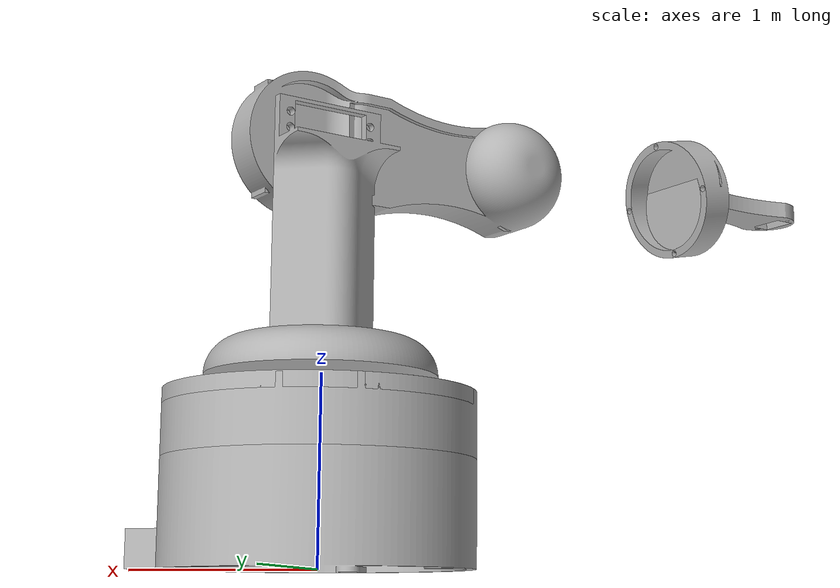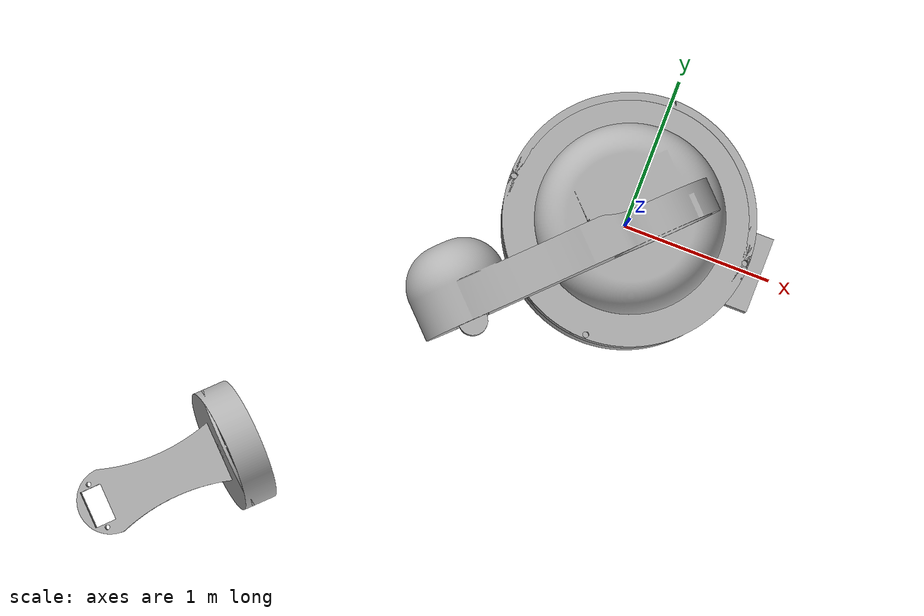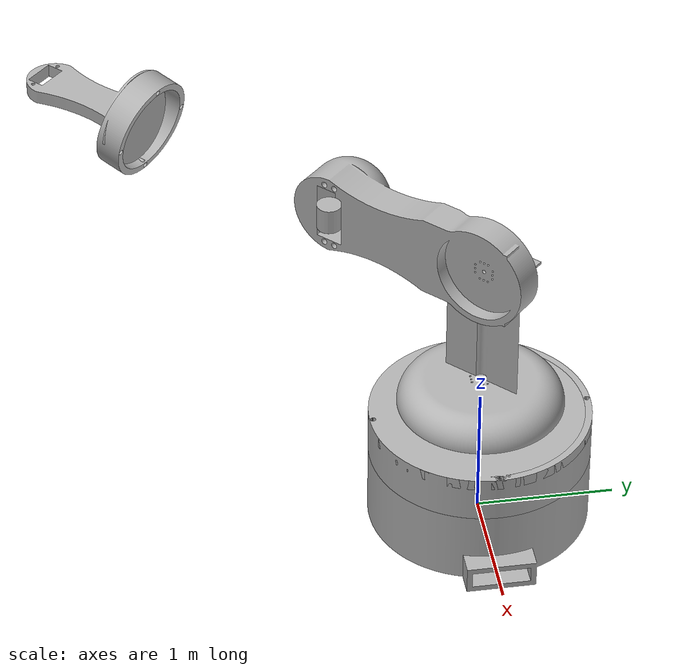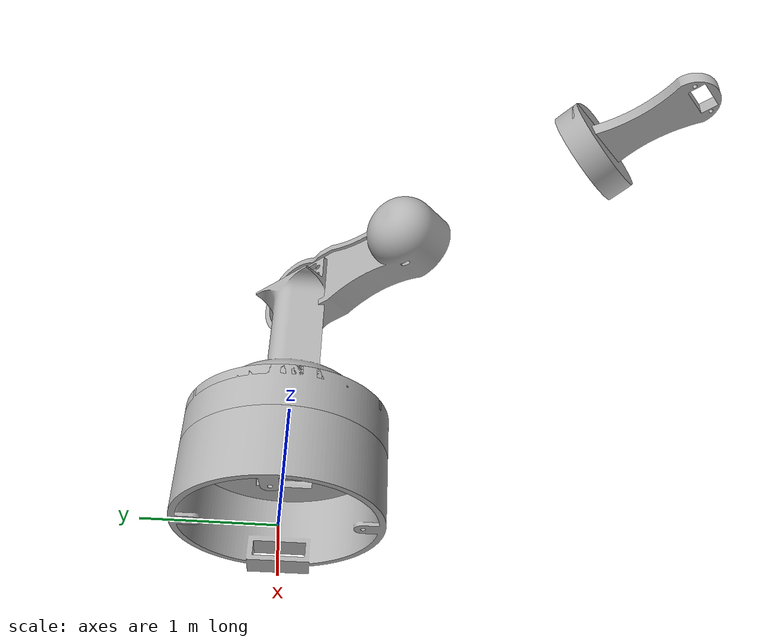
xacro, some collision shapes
<?xml version="1.0"?>
<robot xmlns:xacro="http://ros.org/wiki/xacro" name="simple_arm">

  <!--Material-->
  <xacro:property name="mesh_scale" value="0.01 0.01 0.01"/>

  <material name="grey">
    <color rgba="0.7 0.7 0.7 1.0"/>
  </material>

  <!--Base Link-->

  <gazebo>
    <static> true </static>
    <plugin name="gazebo_ros2_control" filename="libgazebo_ros2_control.so"/>
  </gazebo>

  <ros2_control name="SimpleArmHardware" type="system">
    <hardware>
      <plugin>mock_components/GenericSystem</plugin>
    </hardware>
    <joint name="joint2">
      <command_interface name="position"/>
      <state_interface name="position"/>
      <state_interface name="velocity"/>
    </joint>
    <joint name="joint3">
      <command_interface name="position"/>
      <state_interface name="position"/>
      <state_interface name="velocity"/>
    </joint>
    <joint name="joint4">
      <command_interface name="position"/>
      <state_interface name="position"/>
      <state_interface name="velocity"/>
    </joint>
    <joint name="joint5">
      <command_interface name="position"/>
      <state_interface name="position"/>
      <state_interface name="velocity"/>
    </joint>
  </ros2_control>

  <link name="Base">
    <visual>
      <origin xyz="0 0 0" rpy="${1.5708} 0 0"/>
      <geometry>
        <mesh filename="/home/bbhanda/scoutbot_ws/src/scoutbot_description/meshes/Base.stl" scale="${mesh_scale}"/>
      </geometry>
      <material name="grey"/>
    </visual>
  </link>

  <link name="Base_Cover">
    <visual>
      <origin xyz="0 0 0" rpy="${1.5708} 0 0"/>
      <geometry>
        <mesh filename="/home/bbhanda/scoutbot_ws/src/scoutbot_description/meshes/Base_Cover.stl" scale="${mesh_scale}"/>
      </geometry>
      <material name="grey"/>
    </visual>

    <collision>
      <origin xyz="0 0 0" rpy="0 0 0"/>
      <geometry>
        <box size="0.3 0.3 0.05"/>
      </geometry>
    </collision>

    <inertial>
      <mass value="2.0"/>
      <origin xyz="0 0 0" rpy="0 0 0"/>
      <inertia ixx="0.01" ixy="0.00" ixz="0.00"
      iyy="0.01" iyz="0.00"
      izz="0.01"/>
    </inertial>
  </link>

  <joint name="base" type="fixed">
    <parent link="Base"/>
    <child link="Base_Cover"/>
    <origin xyz="0 0 0.55" rpy="0 0 0"/>
  </joint>

<!--Joint_1-->
  <link name="Joint_1">
    <visual>
      <origin xyz="0 0 0" rpy="${-1.5708} 0 0"/>
      <geometry>
        <mesh filename="/home/bbhanda/scoutbot_ws/src/scoutbot_description/meshes/Joint_1.stl" scale="${mesh_scale}"/>
      </geometry>
      <material name="grey"/>
    </visual>

    <collision>
      <origin xyz="0 0 0" rpy="0 0 0"/>
      <geometry>
        <box size="0.3 0.3 0.05"/>
      </geometry>
    </collision>

    <inertial>
      <mass value="2.0"/>
      <origin xyz="0 0 0" rpy="0 0 0"/>
      <inertia ixx="0.01" ixy="0.00" ixz="0.00"
      iyy="0.01" iyz="0.00"
      izz="0.01"/>
    </inertial>
  </link>

  <joint name="joint1" type="fixed">
    <parent link="Base_Cover"/>
    <child link="Joint_1"/>
    <origin xyz="0 0 0.345" rpy="0 0 0"/>
  </joint>

<!--Joint_2-->
  <link name="Joint_2">
    <visual>
      <origin xyz="0 0 0" rpy="${1.5708} 0 0"/>
      <geometry>
        <mesh filename="/home/bbhanda/scoutbot_ws/src/scoutbot_description/meshes/Link_1-Joint_2.stl" scale="${mesh_scale}"/>
      </geometry>
      <material name="grey"/>
    </visual>

    <collision>
      <origin xyz="0 0 0" rpy="0 0 0"/>
      <geometry>
        <cylinder radius="0.025" length="0.2"/>
      </geometry>
    </collision>

    <inertial>
      <mass value="1.0"/>
      <origin xyz="0 0 0" rpy="0 0 0"/>
      <inertia ixx="0.005" ixy="0" ixz="0" iyy="0.005" iyz="0" izz="0.005"/>
    </inertial>
  </link>

  <transmission name="joint2_trans">
    <type>transmission_interface/SimpleTransmission</type>
    <joint name="joint2">
      <hardwareInterface>hardware_interface/PositionJointInterface</hardwareInterface>
    </joint>
    <actuator name="joint2_motor">
      <mechanicalReduction>1</mechanicalReduction>
    </actuator>
  </transmission>

  <joint name="joint2" type="revolute">
    <parent link="Joint_1"/>
    <child link="Joint_2"/>
    <origin xyz="0 0 0.08" rpy="0 0 0"/>
    <axis xyz="0 0 1"/>
    <limit lower="-3.14" upper="3.14" effort="5.0" velocity="1.0"/>
  </joint>

  <gazebo reference="joint2">
    <kp>100.0</kp>
    <kd>1.0</kd>
    <mu1>1.0</mu1>
    <mu2>1.0</mu2>
    <fdir1>1 0 0</fdir1>
  </gazebo>

<!--Joint_3-->
  <link name="Joint_3">
    <visual>
      <origin xyz="-0.5 0 0" rpy="0 1.5708 0"/>
      <geometry>
        <mesh filename="/home/bbhanda/scoutbot_ws/src/scoutbot_description/meshes/Link_2-Joint_3.stl" scale="${mesh_scale}"/>
      </geometry>
      <material name="grey"/>
    </visual>

    <collision>
      <origin xyz="0 0 0" rpy="0 0 0"/>
      <geometry>
        <cylinder radius="0.025" length="0.19"/>
      </geometry>
    </collision>

    <inertial>
      <mass value="1.0"/>
      <origin xyz="0 0 0" rpy="0 0 0"/>
      <inertia ixx="0.005" ixy="0" ixz="0" iyy="0.005" iyz="0" izz="0.005"/>
    </inertial>
  </link>

  <transmission name="joint3_trans">
    <type>transmission_interface/SimpleTransmission</type>
    <joint name="joint3">
      <hardwareInterface>hardware_interface/PositionJointInterface</hardwareInterface>
    </joint>
    <actuator name="joint3_motor">
      <mechanicalReduction>1</mechanicalReduction>
    </actuator>
  </transmission>

  <joint name="joint3" type="revolute">
    <parent link="Joint_2"/>
    <child link="Joint_3"/>
    <origin xyz="0.2 -0.1 1.25" rpy="0 0 0.785"/>
    <axis xyz="0 1 0"/>
    <limit lower="-3.14" upper="3.14" effort="5.0" velocity="1.0"/>
  </joint>

  <gazebo reference="joint3">
    <kp>100.0</kp>
    <kd>1.0</kd>
    <mu1>1.0</mu1>
    <mu2>1.0</mu2>
    <fdir1>1 0 0</fdir1>
  </gazebo>

<!--Joint_4-->
  <link name="Joint_4">
    <visual>
      <origin xyz="-0.70 -0.20 0.1" rpy="0 1.7508 0"/>
      <geometry>
        <mesh filename="/home/bbhanda/scoutbot_ws/src/scoutbot_description/meshes/Link_3-Joint_4.stl" scale="${mesh_scale}"/>
      </geometry>
      <material name="grey"/>
    </visual>

    <collision>
      <origin xyz="0 0 0" rpy="0 0 0"/>
      <geometry>
        <cylinder radius="0.09" length="0.19"/>
      </geometry>
    </collision>

    <inertial>
      <mass value="1.0"/>
      <origin xyz="0 0 0" rpy="0 0 0"/>
      <inertia ixx="0.005" ixy="0" ixz="0" iyy="0.005" iyz="0" izz="0.005"/>
    </inertial>
  </link>

  <transmission name="joint4_trans">
    <type>transmission_interface/SimpleTransmission</type>
    <joint name="joint4">
      <hardwareInterface>hardware_interface/PositionJointInterface</hardwareInterface>
    </joint>
    <actuator name="joint4_motor">
      <mechanicalReduction>1</mechanicalReduction>
    </actuator>
  </transmission>

  <joint name="joint4" type="revolute">
    <parent link="Joint_3"/>
    <child link="Joint_4"/>
    <origin xyz="-1.25 0 0" rpy="0 0 0"/>
    <axis xyz="0 1 0"/>
    <limit lower="-3.14" upper="3.14" effort="5.0" velocity="1.0"/>
  </joint>

  <gazebo reference="joint4">
    <kp>100.0</kp>
    <kd>1.0</kd>
    <mu1>1.0</mu1>
    <mu2>1.0</mu2>
    <fdir1>1 0 0</fdir1>
  </gazebo>

<!--Joint_5-->
  <link name="Joint_5">
    <visual>
      <origin xyz="-0.4 0 0" rpy="0.2 0 1.5708"/>
      <geometry>
        <mesh filename="/home/bbhanda/scoutbot_ws/src/scoutbot_description/meshes/Link_4-Joint_5.stl" scale="${mesh_scale}"/>
      </geometry>
      <material name="grey"/>
    </visual>

    <collision>
      <origin xyz="0 0 0" rpy="0 0 0"/>
      <geometry>
        <cylinder radius="0.077" length="0.02"/>
      </geometry>
    </collision>

    <inertial>
      <mass value="1.0"/>
      <origin xyz="0 0 0" rpy="0 0 0"/>
      <inertia ixx="0.005" ixy="0" ixz="0" iyy="0.005" iyz="0" izz="0.005"/>
    </inertial>
  </link>

  <transmission name="joint5_trans">
    <type>transmission_interface/SimpleTransmission</type>
    <joint name="joint5">
      <hardwareInterface>hardware_interface/PositionJointInterface</hardwareInterface>
    </joint>
    <actuator name="joint5_motor">
      <mechanicalReduction>1</mechanicalReduction>
    </actuator>
  </transmission>

  <joint name="joint5" type="revolute">
    <parent link="Joint_4"/>
    <child link="Joint_5"/>
    <origin xyz="-1.25 -0.1 0.2" rpy="0 0 0"/>
    <axis xyz="1 0 0"/>
    <limit lower="-3.14" upper="3.14" effort="5.0" velocity="1.0"/>
  </joint>

  <gazebo reference="joint5">
    <kp>100.0</kp>
    <kd>1.0</kd>
    <mu1>1.0</mu1>
    <mu2>1.0</mu2>
    <fdir1>1 0 0</fdir1>
  </gazebo>

<!--Joint_6-->
  <link name="Joint_6">
    <visual>
      <origin xyz="-0.4 0 0" rpy="0.005 0 -1.5708"/>
      <geometry>
        <mesh filename="/home/bbhanda/scoutbot_ws/src/scoutbot_description/meshes/Link_5-Joint_6.stl" scale="${mesh_scale}"/>
      </geometry>
      <material name="grey"/>
    </visual>

    <collision>
      <origin xyz="0 0 0" rpy="0 0 0"/>
      <geometry>
        <cylinder radius="0.075" length="0.077"/>
      </geometry>
    </collision>

    <inertial>
      <mass value="1.0"/>
      <origin xyz="0 0 0" rpy="0 0 0"/>
      <inertia ixx="0.005" ixy="0" ixz="0" iyy="0.005" iyz="0" izz="0.005"/>
    </inertial>
  </link>

  <joint name="joint6" type="fixed">
    <parent link="Joint_5"/>
    <child link="Joint_6"/>
    <origin xyz="0 0 0" rpy="0 0 0"/>
  </joint>

</robot>
